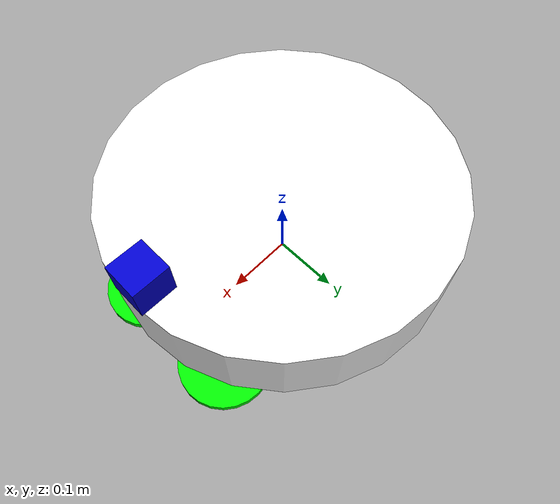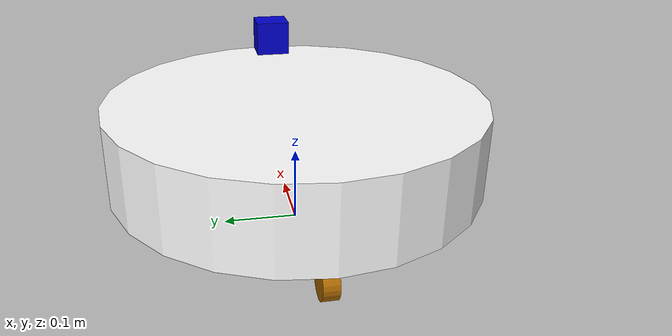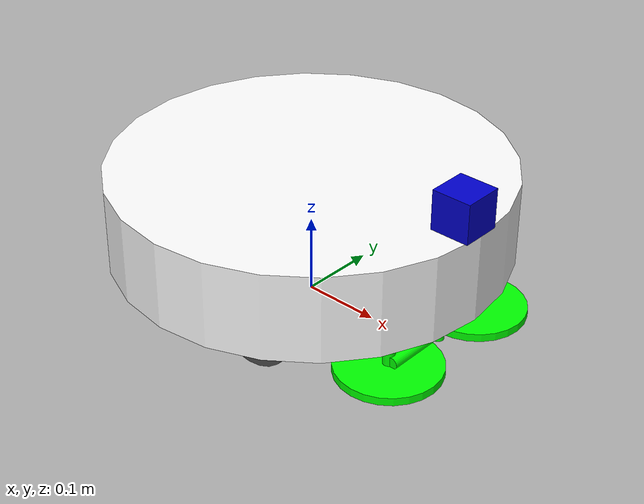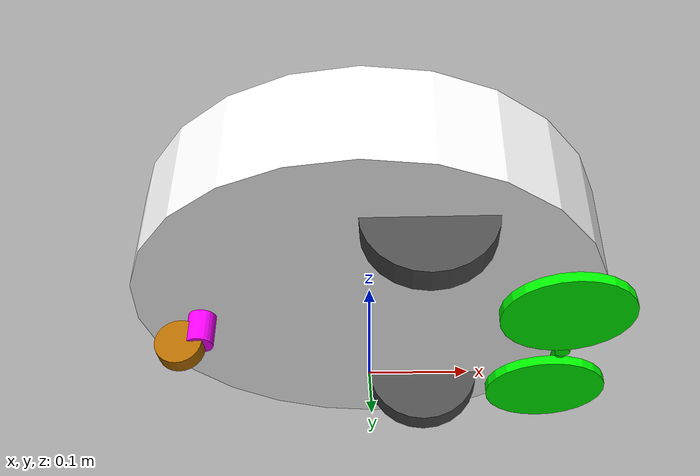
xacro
<?xml version="1.0"?>
<robot name="cleaning_robot" xmlns:xacro="http://www.ros.org/wiki/xacro">

    <!--Inclusions-->
    <xacro:include filename="$(find diplom)/urdf/colors.urdf.xacro"/>
    <xacro:include filename="$(find diplom)/urdf/constants.urdf.xacro"/>
    <xacro:include filename="$(find diplom)/urdf/properties.urdf.xacro"/>
    <xacro:include filename="$(find diplom)/urdf/macros.urdf.xacro"/>
    <xacro:include filename="$(find diplom)/urdf/links.urdf.xacro"/>
    <xacro:include filename="$(find diplom)/urdf/joints.urdf.xacro"/>
    <xacro:include filename="$(find diplom)/urdf/wheels.urdf.xacro"/>

    <xacro:wheel fb="front" lr="right" parent="base_link" translateX="1" translateY="-1" flipY="1"/>
    <xacro:wheel fb="front" lr="left" parent="base_link" translateX="1" translateY="1" flipY="1"/>

    <gazebo reference="base_footprint">
        <turnGravityOff>false</turnGravityOff>
    </gazebo>

    <gazebo reference="base_link">
        <material>Gazebo/White</material>
        <turnGravityOff>false</turnGravityOff>
    </gazebo>

    <gazebo reference="caster_rotator">
        <turnGravityOff>false</turnGravityOff>
    </gazebo>

    <gazebo reference="caster">
        <turnGravityOff>false</turnGravityOff>
    </gazebo>

    <gazebo reference="brush_lift">
        <turnGravityOff>false</turnGravityOff>
    </gazebo>

    <gazebo reference="left_brush_connector1">
        <turnGravityOff>false</turnGravityOff>
    </gazebo>

    <gazebo reference="left_brush_connector2">
        <turnGravityOff>false</turnGravityOff>
    </gazebo>

    <gazebo reference="right_brush_connector1">
        <turnGravityOff>false</turnGravityOff>
    </gazebo>

    <gazebo reference="right_brush_connector2">
        <turnGravityOff>false</turnGravityOff>
    </gazebo>

    <gazebo reference="left_brush">
        <turnGravityOff>false</turnGravityOff>
    </gazebo>

    <gazebo reference="right_brush">
        <turnGravityOff>false</turnGravityOff>
    </gazebo>

    <gazebo reference="hokuyo_link">
        <material>Gazebo/Blue</material>
        <turnGravityOff>false</turnGravityOff>
        <sensor type="ray" name="head_hokuyo_sensor">
            <pose>${hokuyo_size/2} 0 0 0 0 0</pose>
            <visualize>false</visualize>
            <update_rate>40</update_rate>
            <ray>
                <scan>
                    <horizontal>
                        <samples>720</samples>
                        <resolution>1</resolution>
                        <min_angle>${-M_PI_2}</min_angle>
                        <max_angle>${M_PI_2}</max_angle>
                    </horizontal>
                </scan>
                <range>
                    <min>0.10</min>
                    <max>10.0</max>
                    <resolution>0.001</resolution>
                </range>
            </ray>
            <plugin name="gazebo_ros_head_hokuyo_controller" filename="libgazebo_ros_laser.so">
                <topicName>/scan</topicName>
                <frameName>hokuyo_link</frameName>
            </plugin>
        </sensor>
    </gazebo>

    <gazebo>
        <plugin name="differential_drive_controller" filename="libgazebo_ros_diff_drive.so">
            <legacyMode>true</legacyMode>
            <rosDebugLevel>Debug</rosDebugLevel>
            <publishWheelTF>false</publishWheelTF>
            <robotNamespace>/</robotNamespace>
            <publishTf>1</publishTf>
            <publishWheelJointState>false</publishWheelJointState>
            <alwaysOn>true</alwaysOn>
            <updateRate>100.0</updateRate>
            <leftJoint>front_left_wheel_joint</leftJoint>
            <rightJoint>front_right_wheel_joint</rightJoint>
            <wheelSeparation>${2*base_r}</wheelSeparation>
            <wheelDiameter>${2*whl_r}</wheelDiameter>
            <broadcastTF>1</broadcastTF>
            <wheelTorque>30</wheelTorque>
            <wheelAcceleration>1.5</wheelAcceleration>
            <commandTopic>cmd_vel</commandTopic>
            <odometryFrame>odom</odometryFrame>
            <odometryTopic>odom</odometryTopic>
            <robotBaseFrame>base_footprint</robotBaseFrame>
        </plugin>
    </gazebo>

</robot>

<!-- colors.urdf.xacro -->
<robot name="COLORS" xmlns:xacro="http://www.ros.org/wiki/xacro">

    <!--Colors-->
    <material name="Gray">
        <color rgba="0.6 1 0.8 1"/>
    </material>

    <material name="DarkGray">
        <color rgba="0.3 0.3 0.3 1"/>
    </material>

    <material name="Orange">
        <color rgba="1 0.6 0 1"/>
    </material>

    <material name="Purple">
        <color rgba="1 0 1 1"/>
    </material>

    <material name="DarkOrange">
        <color rgba="0.7 0.42 0 1"/>
    </material>

    <material name="Green">
        <color rgba="0 1 0 1"/>
    </material>

    <material name="Red">
        <color rgba="1 0 0 1"/>
    </material>

    <material name="Blue">
        <color rgba="0.0 0.0 0.8 1.0"/>
    </material>

    <material name="White">
        <color rgba="1.0 1.0 1.0 1.0"/>
    </material>

</robot>

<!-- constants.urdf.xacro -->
<robot name="CONSTANTS" xmlns:xacro="http://www.ros.org/wiki/xacro">

    <!--Constants-->
    <xacro:property name="M_PI" value="3.1415926535897931"/>
    <xacro:property name="M_PI_2" value="1.57079632679" />
    <xacro:property name="DEG_TO_RAD" value="0.017453293" />

</robot>

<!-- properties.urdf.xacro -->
<robot name="PROPERTIES" xmlns:xacro="http://www.ros.org/wiki/xacro">

    <xacro:property name="base_x_to_wheel" value="0.06"/>
    <xacro:property name="base_y_to_wheel" value="0.156"/>
    <xacro:property name="base_z_to_wheel" value="0.05"/>

        <!--Component dimensions-->
    <xacro:property name="base_h" value="0.11"/>
    <xacro:property name="base_r" value="0.25"/>
    <xacro:property name="base_m" value="5.0" />

    <xacro:property name="caster_h" value="0.02"/>
    <xacro:property name="caster_r" value="0.025"/>
    <xacro:property name="caster_m" value="0.15"/>

    <xacro:property name="caster_rot_h" value="0.06"/>
    <xacro:property name="caster_rot_r" value="0.015"/>
    <xacro:property name="caster_rot_m" value="0.15"/>

    <xacro:property name="br_lft_h" value="0.10"/>
    <xacro:property name="br_lft_r" value="0.0075"/>
    <xacro:property name="br_lft_m" value="0.15"/>

    <xacro:property name="br_con1_h" value="0.09"/>
    <xacro:property name="br_con1_r" value="0.0075"/>
    <xacro:property name="br_con1_m" value="0.15"/>

    <xacro:property name="br_con2_h" value="0.025"/>
    <xacro:property name="br_con2_r" value="0.0075"/>
    <xacro:property name="br_con2_m" value="0.15"/>

    <xacro:property name="br_h" value="0.01"/>
    <xacro:property name="br_r" value="0.065"/>
    <xacro:property name="br_m" value="0.15"/>

    <xacro:property name="whl_h" value="0.03"/>
    <xacro:property name="whl_r" value="0.065"/>
    <xacro:property name="whl_m" value="0.2"/>

    <xacro:property name="hokuyo_size" value="0.05" />

</robot>

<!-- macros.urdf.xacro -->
<robot name="MACROS" xmlns:xacro="http://www.ros.org/wiki/xacro">

    <xacro:macro name="cylinder_inertia" params="m r h">
        <inertia ixx="${10*m*(3*r*r+h*h)/12}" ixy = "0.0" ixz = "0.0" iyy="${10*m*(3*r*r+h*h)/12}" iyz = "0.0" izz="${10*m*r*r/2}"/>
    </xacro:macro>

</robot>

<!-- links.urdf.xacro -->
<robot name="LINKS" xmlns:xacro="http://www.ros.org/wiki/xacro">

    <link name="base_footprint">
        <inertial>
            <mass value="0.0001"/>
            <origin xyz="0 0 0"/>
            <inertia    ixx="0.0001" ixy="0.0" ixz="0.0"
                        iyy="0.0001" iyz="0.0"
                        izz="0.0001"/>
        </inertial>
        <visual>
            <origin xyz="0 0 0" rpy="0 0 0"/>
            <geometry>
                <box size="0.001 0.001 0.001"/>
            </geometry>
        </visual>
    </link>

    <link name="base_link">
        <inertial>
            <mass value="${base_m}"/>
            <origin xyz="0 0 0"/>
            <xacro:cylinder_inertia m="${base_m}" r="${base_r}" h="${base_h}"/>
        </inertial>
        <visual>
            <origin xyz="0 0 0" rpy="0 0 0"/>
            <geometry>
                <cylinder length="${base_h}" radius="${base_r}"/>
            </geometry>
            <material name="White"/>
        </visual>
        <collision>
            <origin xyz="0 0 0" rpy="0 0 0"/>
            <geometry>
                <cylinder length="${base_h}" radius="${base_r}"/>
            </geometry>
        </collision>
    </link>

    <link name="caster_rotator">
        <inertial>
            <mass value="${caster_rot_m}"/>
            <origin xyz="0 0 0"/>
            <inertia    ixx="0.001" ixy="0.0" ixz="0.0"
                        iyy="0.001" iyz="0.0"
                        izz="0.001"/>
        </inertial>
        <visual>
            <geometry>
                <cylinder length="${caster_rot_h}" radius="${caster_rot_r}"/>
            </geometry>
            <material name="Purple"/>
        </visual>
        <collision>
            <geometry>
                <cylinder length="${caster_rot_h}" radius="${caster_rot_r}"/>
            </geometry>
        </collision>
    </link>

    <link name="caster">
        <inertial>
            <mass value="${caster_m}"/>
            <origin xyz="0 0 0"/>
            <inertia    ixx="0.001" ixy="0.0" ixz="0.0"
                        iyy="0.001" iyz="0.0"
                        izz="0.001"/>
        </inertial>
        <visual>
            <geometry>
                <cylinder length="${caster_h}" radius="${caster_r}"/>
            </geometry>
            <material name="DarkOrange"/>
        </visual>
        <collision>
            <geometry>
                <cylinder length="${caster_h}" radius="${caster_r}"/>
            </geometry>
        </collision>
    </link>

    <link name="brush_lift">
        <inertial>
            <mass value="${br_lft_m}"/>
            <origin xyz="0 0 0"/>
            <inertia    ixx="0.001" ixy="0.0" ixz="0.0"
                        iyy="0.001" iyz="0.0"
                        izz="0.001"/>
        </inertial>
        <visual>
            <geometry>
                <cylinder length="${br_lft_h}" radius="${br_lft_r}"/>
            </geometry>
            <material name="Green"/>
        </visual>
        <collision>
            <geometry>
                <cylinder length="${br_lft_h}" radius="${br_lft_r}"/>
            </geometry>
        </collision>
    </link>

    <link name="left_brush_connector1">
        <inertial>
            <mass value="${br_con1_m}"/>
            <origin xyz="0 0 0"/>
            <inertia    ixx="0.001" ixy="0.0" ixz="0.0"
                        iyy="0.001" iyz="0.0"
                        izz="0.001"/>
        </inertial>
        <visual>
            <geometry>
                <cylinder length="${br_con1_h}" radius="${br_con1_r}"/>
            </geometry>
            <material name="Green"/>
        </visual>
        <collision>
            <geometry>
                <cylinder length="${br_con1_h}" radius="${br_con1_r}"/>
            </geometry>
        </collision>
    </link>

    <link name="left_brush_connector2">
        <inertial>
            <mass value="${br_con2_m}"/>
            <origin xyz="0 0 0"/>
            <inertia    ixx="0.001" ixy="0.0" ixz="0.0"
                        iyy="0.001" iyz="0.0"
                        izz="0.001"/>
        </inertial>
        <visual>
            <geometry>
                <cylinder length="${br_con2_h}" radius="${br_con2_r}"/>
            </geometry>
            <material name="Green"/>
        </visual>
        <collision>
            <geometry>
                <cylinder length="${br_con2_h}" radius="${br_con2_r}"/>
            </geometry>
        </collision>
    </link>

    <link name="right_brush_connector1">
        <inertial>
            <mass value="${br_con1_m}"/>
            <origin xyz="0 0 0"/>
            <inertia    ixx="0.001" ixy="0.0" ixz="0.0"
                        iyy="0.001" iyz="0.0"
                        izz="0.001"/>
        </inertial>
        <visual>
            <geometry>
                <cylinder length="${br_con1_h}" radius="${br_con1_r}"/>
            </geometry>
            <material name="Green"/>
        </visual>
        <collision>
            <geometry>
                <cylinder length="${br_con1_h}" radius="${br_con1_r}"/>
            </geometry>
        </collision>
    </link>

    <link name="right_brush_connector2">
        <inertial>
            <mass value="${br_con2_m}"/>
            <origin xyz="0 0 0"/>
            <inertia    ixx="0.001" ixy="0.0" ixz="0.0"
                        iyy="0.001" iyz="0.0"
                        izz="0.001"/>
        </inertial>
        <visual>
            <geometry>
                <cylinder length="${br_con2_h}" radius="${br_con2_r}"/>
            </geometry>
            <material name="Green"/>
        </visual>
        <collision>
            <geometry>
                <cylinder length="${br_con2_h}" radius="${br_con2_r}"/>
            </geometry>
        </collision>
    </link>

    <link name="left_brush">
        <inertial>
            <mass value="${br_m}"/>
            <origin xyz="0 0 0"/>
            <inertia    ixx="0.001" ixy="0.0" ixz="0.0"
                        iyy="0.001" iyz="0.0"
                        izz="0.001"/>
        </inertial>
        <visual>
            <geometry>
                <cylinder length="${br_h}" radius="${br_r}"/>
            </geometry>
            <material name="Green"/>
        </visual>
        <collision>
            <geometry>
                <cylinder length="${br_h}" radius="${br_r}"/>
            </geometry>
        </collision>
    </link>

    <link name="right_brush">
        <inertial>
            <mass value="${br_m}"/>
            <origin xyz="0 0 0"/>
            <inertia    ixx="0.001" ixy="0.0" ixz="0.0"
                        iyy="0.001" iyz="0.0"
                        izz="0.001"/>
        </inertial>
        <visual>
            <geometry>
                <cylinder length="${br_h}" radius="${br_r}"/>
            </geometry>
            <material name="Green"/>
        </visual>
        <collision>
            <geometry>
                <cylinder length="${br_h}" radius="${br_r}"/>
            </geometry>
        </collision>
    </link>

    <link name="hokuyo_link">
        <visual>
            <origin xyz="0 0 0" rpy="0 0 0" />
            <geometry>
                <box size="${hokuyo_size} ${hokuyo_size} ${hokuyo_size}"/>
            </geometry>
            <material name="Blue" />
        </visual>
    </link>

</robot>

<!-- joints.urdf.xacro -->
<robot name="JOINTS" xmlns:xacro="http://www.ros.org/wiki/xacro">

    <joint name="base_link_joint" type="fixed">
        <origin xyz="0 0 ${whl_r+base_z_to_wheel+0.01}" rpy="0 0 0"/>
        <parent link="base_footprint"/>
        <child link="base_link"/>
    </joint>

    <joint name="caster_rotator_joint" type="fixed">
        <origin rpy="0 0 0" xyz="-0.18 0 ${-0.06}"/>
        <parent link="base_link"/>
        <child link="caster_rotator"/>
        <axis xyz="0 0 1"/>
    </joint>

    <joint name="caster_joint" type="continuous">
        <origin rpy="${M_PI_2} 0 0" xyz="-0.02 0 -0.03"/>
        <parent link="caster_rotator"/>
        <child link="caster"/>
        <axis xyz="0 0 1"/>
        <dynamics damping="10" friction="0.05"/>
    </joint>

    <joint name="brush_lift_joint" type="prismatic">
        <origin rpy="0 0 ${M_PI_2}" xyz="0.2 0 ${-base_h/2}"/>
        <parent link="base_link"/>
        <child link="brush_lift"/>
        <axis xyz="0 0 1"/>
        <limit effort="30" velocity="1.0" lower="0" upper="0.035"/>
    </joint>

    <joint name="left_brush_connector1_joint" type="fixed">
        <origin rpy="0 ${M_PI_2} 0" xyz="0.04 0 -0.04"/>
        <parent link="brush_lift"/>
        <child link="left_brush_connector1"/>
        <axis xyz="0 0 1"/>
    </joint>

    <joint name="right_brush_connector1_joint" type="fixed">
        <origin rpy="0 ${M_PI_2} 0" xyz="-0.04 0 -0.04"/>
        <parent link="brush_lift"/>
        <child link="right_brush_connector1"/>
        <axis xyz="0 0 1"/>
    </joint>

    <joint name="left_brush_connector2_joint" type="fixed">
        <origin rpy="0 ${-M_PI_2} 0" xyz="0 0.008 0.04"/>
        <parent link="left_brush_connector1"/>
        <child link="left_brush_connector2"/>
        <axis xyz="0 0 1"/>
    </joint>

    <joint name="right_brush_connector2_joint" type="fixed">
        <origin rpy="0 ${-M_PI_2} 0" xyz="0 0.008 -0.04"/>
        <parent link="right_brush_connector1"/>
        <child link="right_brush_connector2"/>
        <axis xyz="0 0 1"/>
    </joint>

    <joint name="left_brush_joint" type="continuous">
        <origin rpy="0 0 0" xyz="0 0 -0.01"/>
        <parent link="left_brush_connector2"/>
        <child link="left_brush"/>
        <axis xyz="0 0 1"/>
    </joint>

    <joint name="right_brush_joint" type="continuous">
        <origin rpy="0 0 0" xyz="0 0 -0.01"/>
        <parent link="right_brush_connector2"/>
        <child link="right_brush"/>
        <axis xyz="0 0 -1"/>
    </joint>

    <joint name="hokuyo_joint" type="fixed">
        <origin xyz="${base_r - hokuyo_size/2} 0 ${base_h/2+hokuyo_size/2}" rpy="0 0 0" />
        <parent link="base_link"/>
        <child link="hokuyo_link" />
    </joint>

</robot>

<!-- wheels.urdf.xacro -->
<robot name="WHEELS" xmlns:xacro="https://www.ros.org/wiki/xacro">

    <xacro:macro name="wheel" params="fb lr parent translateX translateY flipY">
        <link name="${fb}_${lr}_wheel">
            <visual>
                <origin xyz="0 0 0" rpy="${flipY*M_PI_2} 0 0" />
                <geometry>
                    <cylinder length="${whl_h}" radius="${whl_r}" />
                </geometry>
                <material name="DarkGray" />
            </visual>
            <collision>
                <origin xyz="0 0 0" rpy="${flipY*M_PI_2} 0 0" />
                <geometry>
                    <cylinder length="${whl_h}" radius="${whl_r}" />
                </geometry>
            </collision>
            <inertial>
                <mass value="${whl_m}" />
                <origin xyz="0 0 0" />
                <xacro:cylinder_inertia  m="${whl_m}" r="${whl_r}" h="${whl_h}" />
            </inertial>
        </link>

        <gazebo reference="${fb}_${lr}_wheel">
            <mu1 value="1.0"/>
            <mu2 value="1.0"/>
            <kp  value="10000000.0" />
            <kd  value="1.0" />
            <fdir1 value="1 0 0"/>
            <material>Gazebo/Grey</material>
            <turnGravityOff>false</turnGravityOff>
        </gazebo>

        <joint name="${fb}_${lr}_wheel_joint" type="continuous">
            <parent link="${parent}"/>
            <child link="${fb}_${lr}_wheel"/>
            <origin xyz="${translateX * base_x_to_wheel} ${translateY * base_y_to_wheel} ${-base_z_to_wheel}" rpy="0 0 0" />
            <axis xyz="0 1 0" rpy="0 0 0" />
            <limit effort="100" velocity="100"/>
            <joint_properties damping="0.0" friction="0.0"/>
        </joint>

    <!-- Transmission is important to link the joints and the controller -->
        <transmission name="${fb}_${lr}_wheel_joint_trans">
            <type>transmission_interface/SimpleTransmission</type>
            <joint name="${fb}_${lr}_wheel_joint" />
            <actuator name="${fb}_${lr}_wheel_joint_motor">
                <hardwareInterface>EffortJointInterface</hardwareInterface>
                <mechanicalReduction>1</mechanicalReduction>
            </actuator>
        </transmission>

    </xacro:macro>
</robot>
